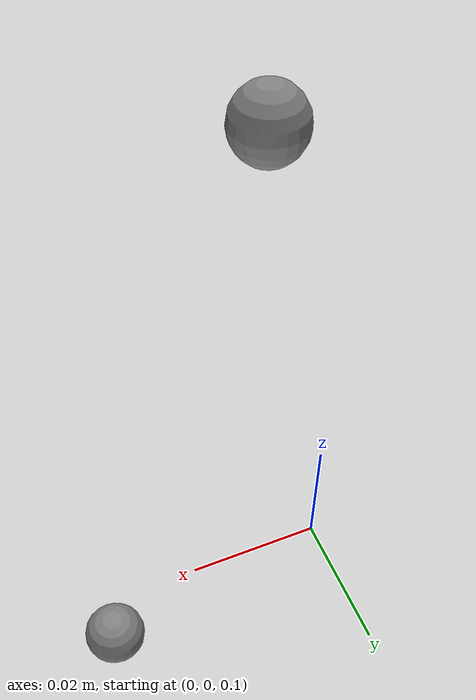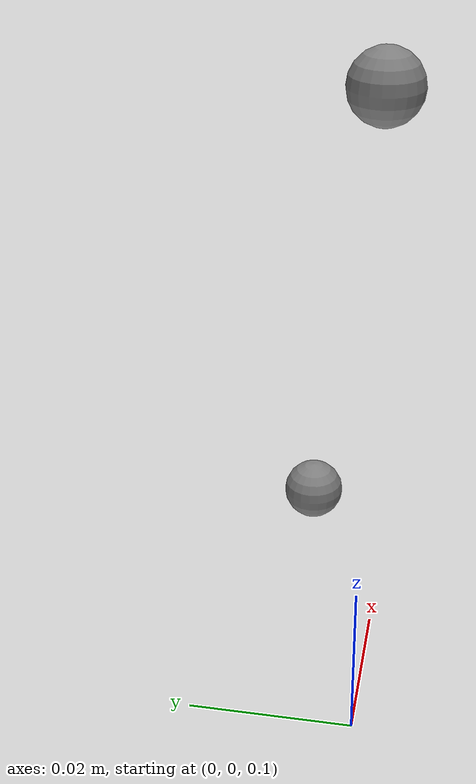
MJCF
<mujoco>
  <option gravity="0 0 -9.81" timestep="0.001"/>
  <worldbody>
<body name="upper" pos="0 0 0.2">
  <joint type="hinge" axis="0 1 0"/>
  <geom type="sphere" pos="0.01 0 -0.025" size="0.004" mass="0.3"/>
  <body name="lower" pos="0.02 0 -0.05">
    <joint type="hinge" axis="1 0.3 0"/>
    <geom type="sphere" pos="0.015 0.01 -0.04" size="0.004" mass="0.4"/>
  </body>
</body>
  </worldbody>
</mujoco>
